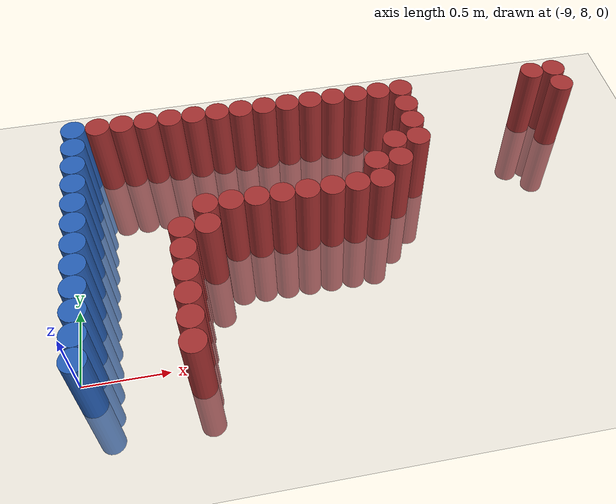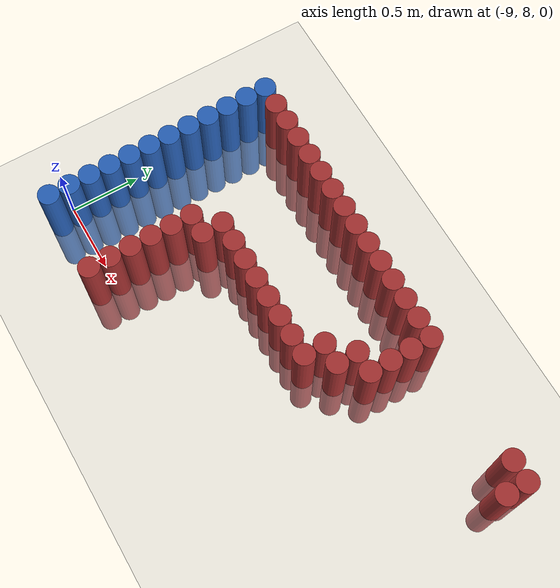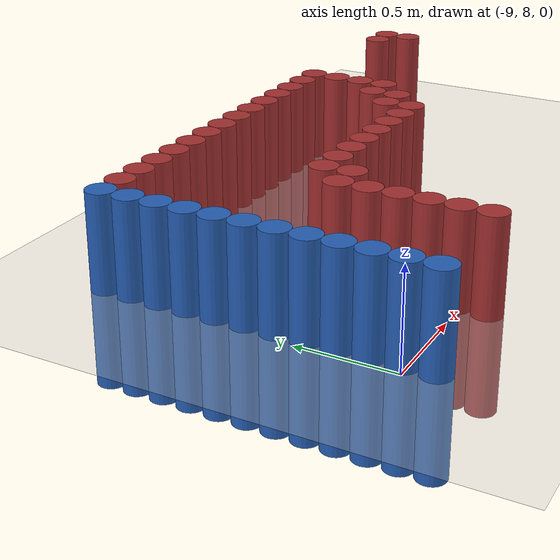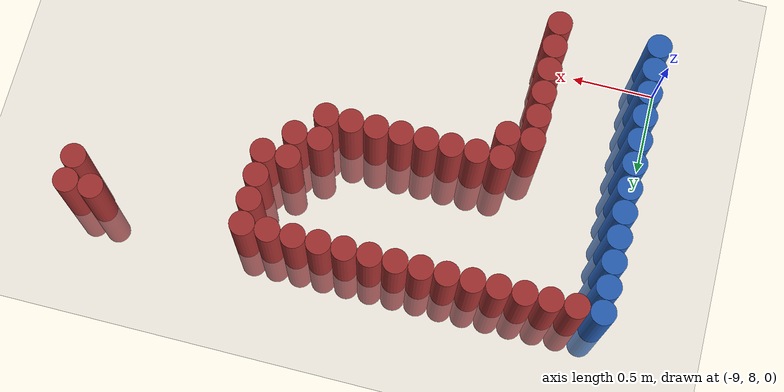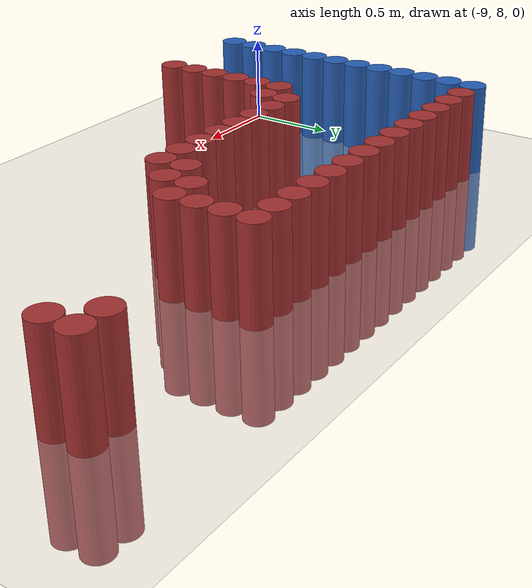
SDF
<sdf version="1.6">
 <world name="default">
  <model name="ground_plane">
   <static>1</static>
   <link name="link">
    <collision name="collision">
     <geometry><plane><normal>0 0 1</normal><size>100 100</size></plane></geometry>
     <surface><friction><ode><mu>100</mu><mu2>50</mu2></ode></friction></surface>
    </collision>
    <visual name="visual">
     <cast_shadows>0</cast_shadows>
     <geometry><plane><normal>0 0 1</normal><size>100 100</size></plane></geometry>
     <material>
      <script><uri>file://media/materials/scripts/gazebo.material</uri><name>Gazebo/Grey</name></script>
     </material>
    </visual>
   </link>
  </model>
  <model name="unit_cylinder_143">
   <static>1</static>
   <pose>-8.925000 7.875000 0.000000 0.000000 0.000000 0.000000</pose>
   <link name="link">
    <inertial>
     <mass>1</mass>
     <inertia><ixx>0.145833</ixx><ixy>0</ixy><ixz>0</ixz><iyy>0.145833</iyy><iyz>0</iyz><izz>0.125</izz></inertia>
    </inertial>
    <collision name="collision">
     <geometry><cylinder><radius>0.075000</radius><length>1</length></cylinder></geometry>
    </collision>
    <visual name="visual">
     <geometry><cylinder><radius>0.075000</radius><length>1</length></cylinder></geometry>
     <material>
      <ambient>0.152000 0.379000 0.720000 1</ambient>
      <diffuse>0.152000 0.379000 0.720000 1</diffuse>
     </material>
     <material>
      <script><name>Gazebo/Grey</name><uri>file://media/materials/scripts/gazebo.material</uri></script>
     </material>
    </visual>
   </link>
  </model>
  <model name="unit_cylinder_144">
   <static>1</static>
   <pose>-8.925000 8.025000 0.000000 0.000000 0.000000 0.000000</pose>
   <link name="link">
    <inertial>
     <mass>1</mass>
     <inertia><ixx>0.145833</ixx><ixy>0</ixy><ixz>0</ixz><iyy>0.145833</iyy><iyz>0</iyz><izz>0.125</izz></inertia>
    </inertial>
    <collision name="collision">
     <geometry><cylinder><radius>0.075000</radius><length>1</length></cylinder></geometry>
    </collision>
    <visual name="visual">
     <geometry><cylinder><radius>0.075000</radius><length>1</length></cylinder></geometry>
     <material>
      <ambient>0.152000 0.379000 0.720000 1</ambient>
      <diffuse>0.152000 0.379000 0.720000 1</diffuse>
     </material>
     <material>
      <script><name>Gazebo/Grey</name><uri>file://media/materials/scripts/gazebo.material</uri></script>
     </material>
    </visual>
   </link>
  </model>
  <model name="unit_cylinder_145">
   <static>1</static>
   <pose>-8.925000 8.175000 0.000000 0.000000 0.000000 0.000000</pose>
   <link name="link">
    <inertial>
     <mass>1</mass>
     <inertia><ixx>0.145833</ixx><ixy>0</ixy><ixz>0</ixz><iyy>0.145833</iyy><iyz>0</iyz><izz>0.125</izz></inertia>
    </inertial>
    <collision name="collision">
     <geometry><cylinder><radius>0.075000</radius><length>1</length></cylinder></geometry>
    </collision>
    <visual name="visual">
     <geometry><cylinder><radius>0.075000</radius><length>1</length></cylinder></geometry>
     <material>
      <ambient>0.152000 0.379000 0.720000 1</ambient>
      <diffuse>0.152000 0.379000 0.720000 1</diffuse>
     </material>
     <material>
      <script><name>Gazebo/Grey</name><uri>file://media/materials/scripts/gazebo.material</uri></script>
     </material>
    </visual>
   </link>
  </model>
  <model name="unit_cylinder_146">
   <static>1</static>
   <pose>-8.925000 8.325000 0.000000 0.000000 0.000000 0.000000</pose>
   <link name="link">
    <inertial>
     <mass>1</mass>
     <inertia><ixx>0.145833</ixx><ixy>0</ixy><ixz>0</ixz><iyy>0.145833</iyy><iyz>0</iyz><izz>0.125</izz></inertia>
    </inertial>
    <collision name="collision">
     <geometry><cylinder><radius>0.075000</radius><length>1</length></cylinder></geometry>
    </collision>
    <visual name="visual">
     <geometry><cylinder><radius>0.075000</radius><length>1</length></cylinder></geometry>
     <material>
      <ambient>0.152000 0.379000 0.720000 1</ambient>
      <diffuse>0.152000 0.379000 0.720000 1</diffuse>
     </material>
     <material>
      <script><name>Gazebo/Grey</name><uri>file://media/materials/scripts/gazebo.material</uri></script>
     </material>
    </visual>
   </link>
  </model>
  <model name="unit_cylinder_147">
   <static>1</static>
   <pose>-8.925000 8.475000 0.000000 0.000000 0.000000 0.000000</pose>
   <link name="link">
    <inertial>
     <mass>1</mass>
     <inertia><ixx>0.145833</ixx><ixy>0</ixy><ixz>0</ixz><iyy>0.145833</iyy><iyz>0</iyz><izz>0.125</izz></inertia>
    </inertial>
    <collision name="collision">
     <geometry><cylinder><radius>0.075000</radius><length>1</length></cylinder></geometry>
    </collision>
    <visual name="visual">
     <geometry><cylinder><radius>0.075000</radius><length>1</length></cylinder></geometry>
     <material>
      <ambient>0.152000 0.379000 0.720000 1</ambient>
      <diffuse>0.152000 0.379000 0.720000 1</diffuse>
     </material>
     <material>
      <script><name>Gazebo/Grey</name><uri>file://media/materials/scripts/gazebo.material</uri></script>
     </material>
    </visual>
   </link>
  </model>
  <model name="unit_cylinder_148">
   <static>1</static>
   <pose>-8.925000 8.625000 0.000000 0.000000 0.000000 0.000000</pose>
   <link name="link">
    <inertial>
     <mass>1</mass>
     <inertia><ixx>0.145833</ixx><ixy>0</ixy><ixz>0</ixz><iyy>0.145833</iyy><iyz>0</iyz><izz>0.125</izz></inertia>
    </inertial>
    <collision name="collision">
     <geometry><cylinder><radius>0.075000</radius><length>1</length></cylinder></geometry>
    </collision>
    <visual name="visual">
     <geometry><cylinder><radius>0.075000</radius><length>1</length></cylinder></geometry>
     <material>
      <ambient>0.152000 0.379000 0.720000 1</ambient>
      <diffuse>0.152000 0.379000 0.720000 1</diffuse>
     </material>
     <material>
      <script><name>Gazebo/Grey</name><uri>file://media/materials/scripts/gazebo.material</uri></script>
     </material>
    </visual>
   </link>
  </model>
  <model name="unit_cylinder_149">
   <static>1</static>
   <pose>-8.925000 8.775000 0.000000 0.000000 0.000000 0.000000</pose>
   <link name="link">
    <inertial>
     <mass>1</mass>
     <inertia><ixx>0.145833</ixx><ixy>0</ixy><ixz>0</ixz><iyy>0.145833</iyy><iyz>0</iyz><izz>0.125</izz></inertia>
    </inertial>
    <collision name="collision">
     <geometry><cylinder><radius>0.075000</radius><length>1</length></cylinder></geometry>
    </collision>
    <visual name="visual">
     <geometry><cylinder><radius>0.075000</radius><length>1</length></cylinder></geometry>
     <material>
      <ambient>0.152000 0.379000 0.720000 1</ambient>
      <diffuse>0.152000 0.379000 0.720000 1</diffuse>
     </material>
     <material>
      <script><name>Gazebo/Grey</name><uri>file://media/materials/scripts/gazebo.material</uri></script>
     </material>
    </visual>
   </link>
  </model>
  <model name="unit_cylinder_150">
   <static>1</static>
   <pose>-8.925000 8.925000 0.000000 0.000000 0.000000 0.000000</pose>
   <link name="link">
    <inertial>
     <mass>1</mass>
     <inertia><ixx>0.145833</ixx><ixy>0</ixy><ixz>0</ixz><iyy>0.145833</iyy><iyz>0</iyz><izz>0.125</izz></inertia>
    </inertial>
    <collision name="collision">
     <geometry><cylinder><radius>0.075000</radius><length>1</length></cylinder></geometry>
    </collision>
    <visual name="visual">
     <geometry><cylinder><radius>0.075000</radius><length>1</length></cylinder></geometry>
     <material>
      <ambient>0.152000 0.379000 0.720000 1</ambient>
      <diffuse>0.152000 0.379000 0.720000 1</diffuse>
     </material>
     <material>
      <script><name>Gazebo/Grey</name><uri>file://media/materials/scripts/gazebo.material</uri></script>
     </material>
    </visual>
   </link>
  </model>
  <model name="unit_cylinder_151">
   <static>1</static>
   <pose>-8.925000 9.075000 0.000000 0.000000 0.000000 0.000000</pose>
   <link name="link">
    <inertial>
     <mass>1</mass>
     <inertia><ixx>0.145833</ixx><ixy>0</ixy><ixz>0</ixz><iyy>0.145833</iyy><iyz>0</iyz><izz>0.125</izz></inertia>
    </inertial>
    <collision name="collision">
     <geometry><cylinder><radius>0.075000</radius><length>1</length></cylinder></geometry>
    </collision>
    <visual name="visual">
     <geometry><cylinder><radius>0.075000</radius><length>1</length></cylinder></geometry>
     <material>
      <ambient>0.152000 0.379000 0.720000 1</ambient>
      <diffuse>0.152000 0.379000 0.720000 1</diffuse>
     </material>
     <material>
      <script><name>Gazebo/Grey</name><uri>file://media/materials/scripts/gazebo.material</uri></script>
     </material>
    </visual>
   </link>
  </model>
  <model name="unit_cylinder_152">
   <static>1</static>
   <pose>-8.925000 9.225000 0.000000 0.000000 0.000000 0.000000</pose>
   <link name="link">
    <inertial>
     <mass>1</mass>
     <inertia><ixx>0.145833</ixx><ixy>0</ixy><ixz>0</ixz><iyy>0.145833</iyy><iyz>0</iyz><izz>0.125</izz></inertia>
    </inertial>
    <collision name="collision">
     <geometry><cylinder><radius>0.075000</radius><length>1</length></cylinder></geometry>
    </collision>
    <visual name="visual">
     <geometry><cylinder><radius>0.075000</radius><length>1</length></cylinder></geometry>
     <material>
      <ambient>0.152000 0.379000 0.720000 1</ambient>
      <diffuse>0.152000 0.379000 0.720000 1</diffuse>
     </material>
     <material>
      <script><name>Gazebo/Grey</name><uri>file://media/materials/scripts/gazebo.material</uri></script>
     </material>
    </visual>
   </link>
  </model>
  <model name="unit_cylinder_153">
   <static>1</static>
   <pose>-8.925000 9.375000 0.000000 0.000000 0.000000 0.000000</pose>
   <link name="link">
    <inertial>
     <mass>1</mass>
     <inertia><ixx>0.145833</ixx><ixy>0</ixy><ixz>0</ixz><iyy>0.145833</iyy><iyz>0</iyz><izz>0.125</izz></inertia>
    </inertial>
    <collision name="collision">
     <geometry><cylinder><radius>0.075000</radius><length>1</length></cylinder></geometry>
    </collision>
    <visual name="visual">
     <geometry><cylinder><radius>0.075000</radius><length>1</length></cylinder></geometry>
     <material>
      <ambient>0.152000 0.379000 0.720000 1</ambient>
      <diffuse>0.152000 0.379000 0.720000 1</diffuse>
     </material>
     <material>
      <script><name>Gazebo/Grey</name><uri>file://media/materials/scripts/gazebo.material</uri></script>
     </material>
    </visual>
   </link>
  </model>
  <model name="unit_cylinder_154">
   <static>1</static>
   <pose>-8.925000 9.525000 0.000000 0.000000 0.000000 0.000000</pose>
   <link name="link">
    <inertial>
     <mass>1</mass>
     <inertia><ixx>0.145833</ixx><ixy>0</ixy><ixz>0</ixz><iyy>0.145833</iyy><iyz>0</iyz><izz>0.125</izz></inertia>
    </inertial>
    <collision name="collision">
     <geometry><cylinder><radius>0.075000</radius><length>1</length></cylinder></geometry>
    </collision>
    <visual name="visual">
     <geometry><cylinder><radius>0.075000</radius><length>1</length></cylinder></geometry>
     <material>
      <ambient>0.152000 0.379000 0.720000 1</ambient>
      <diffuse>0.152000 0.379000 0.720000 1</diffuse>
     </material>
     <material>
      <script><name>Gazebo/Grey</name><uri>file://media/materials/scripts/gazebo.material</uri></script>
     </material>
    </visual>
   </link>
  </model>
  <model name="unit_cylinder_156">
   <static>1</static>
   <pose>-8.775000 9.525000 0.000000 0.000000 0.000000 0.000000</pose>
   <link name="link">
    <inertial>
     <mass>1</mass>
     <inertia><ixx>0.145833</ixx><ixy>0</ixy><ixz>0</ixz><iyy>0.145833</iyy><iyz>0</iyz><izz>0.125</izz></inertia>
    </inertial>
    <collision name="collision">
     <geometry><cylinder><radius>0.075000</radius><length>1</length></cylinder></geometry>
    </collision>
    <visual name="visual">
     <geometry><cylinder><radius>0.075000</radius><length>1</length></cylinder></geometry>
     <material>
      <ambient>0.648000 0.192000 0.192000 1</ambient>
      <diffuse>0.648000 0.192000 0.192000 1</diffuse>
     </material>
     <material>
      <script><name>Gazebo/Grey</name><uri>file://media/materials/scripts/gazebo.material</uri></script>
     </material>
    </visual>
   </link>
  </model>
  <model name="unit_cylinder_158">
   <static>1</static>
   <pose>-8.625000 9.525000 0.000000 0.000000 0.000000 0.000000</pose>
   <link name="link">
    <inertial>
     <mass>1</mass>
     <inertia><ixx>0.145833</ixx><ixy>0</ixy><ixz>0</ixz><iyy>0.145833</iyy><iyz>0</iyz><izz>0.125</izz></inertia>
    </inertial>
    <collision name="collision">
     <geometry><cylinder><radius>0.075000</radius><length>1</length></cylinder></geometry>
    </collision>
    <visual name="visual">
     <geometry><cylinder><radius>0.075000</radius><length>1</length></cylinder></geometry>
     <material>
      <ambient>0.648000 0.192000 0.192000 1</ambient>
      <diffuse>0.648000 0.192000 0.192000 1</diffuse>
     </material>
     <material>
      <script><name>Gazebo/Grey</name><uri>file://media/materials/scripts/gazebo.material</uri></script>
     </material>
    </visual>
   </link>
  </model>
  <model name="unit_cylinder_160">
   <static>1</static>
   <pose>-8.475000 9.525000 0.000000 0.000000 0.000000 0.000000</pose>
   <link name="link">
    <inertial>
     <mass>1</mass>
     <inertia><ixx>0.145833</ixx><ixy>0</ixy><ixz>0</ixz><iyy>0.145833</iyy><iyz>0</iyz><izz>0.125</izz></inertia>
    </inertial>
    <collision name="collision">
     <geometry><cylinder><radius>0.075000</radius><length>1</length></cylinder></geometry>
    </collision>
    <visual name="visual">
     <geometry><cylinder><radius>0.075000</radius><length>1</length></cylinder></geometry>
     <material>
      <ambient>0.648000 0.192000 0.192000 1</ambient>
      <diffuse>0.648000 0.192000 0.192000 1</diffuse>
     </material>
     <material>
      <script><name>Gazebo/Grey</name><uri>file://media/materials/scripts/gazebo.material</uri></script>
     </material>
    </visual>
   </link>
  </model>
  <model name="unit_cylinder_175">
   <static>1</static>
   <pose>-8.325000 7.875000 0.000000 0.000000 0.000000 0.000000</pose>
   <link name="link">
    <inertial>
     <mass>1</mass>
     <inertia><ixx>0.145833</ixx><ixy>0</ixy><ixz>0</ixz><iyy>0.145833</iyy><iyz>0</iyz><izz>0.125</izz></inertia>
    </inertial>
    <collision name="collision">
     <geometry><cylinder><radius>0.075000</radius><length>1</length></cylinder></geometry>
    </collision>
    <visual name="visual">
     <geometry><cylinder><radius>0.075000</radius><length>1</length></cylinder></geometry>
     <material>
      <ambient>0.648000 0.192000 0.192000 1</ambient>
      <diffuse>0.648000 0.192000 0.192000 1</diffuse>
     </material>
     <material>
      <script><name>Gazebo/Grey</name><uri>file://media/materials/scripts/gazebo.material</uri></script>
     </material>
    </visual>
   </link>
  </model>
  <model name="unit_cylinder_176">
   <static>1</static>
   <pose>-8.325000 8.025000 0.000000 0.000000 0.000000 0.000000</pose>
   <link name="link">
    <inertial>
     <mass>1</mass>
     <inertia><ixx>0.145833</ixx><ixy>0</ixy><ixz>0</ixz><iyy>0.145833</iyy><iyz>0</iyz><izz>0.125</izz></inertia>
    </inertial>
    <collision name="collision">
     <geometry><cylinder><radius>0.075000</radius><length>1</length></cylinder></geometry>
    </collision>
    <visual name="visual">
     <geometry><cylinder><radius>0.075000</radius><length>1</length></cylinder></geometry>
     <material>
      <ambient>0.648000 0.192000 0.192000 1</ambient>
      <diffuse>0.648000 0.192000 0.192000 1</diffuse>
     </material>
     <material>
      <script><name>Gazebo/Grey</name><uri>file://media/materials/scripts/gazebo.material</uri></script>
     </material>
    </visual>
   </link>
  </model>
  <model name="unit_cylinder_177">
   <static>1</static>
   <pose>-8.325000 8.175000 0.000000 0.000000 0.000000 0.000000</pose>
   <link name="link">
    <inertial>
     <mass>1</mass>
     <inertia><ixx>0.145833</ixx><ixy>0</ixy><ixz>0</ixz><iyy>0.145833</iyy><iyz>0</iyz><izz>0.125</izz></inertia>
    </inertial>
    <collision name="collision">
     <geometry><cylinder><radius>0.075000</radius><length>1</length></cylinder></geometry>
    </collision>
    <visual name="visual">
     <geometry><cylinder><radius>0.075000</radius><length>1</length></cylinder></geometry>
     <material>
      <ambient>0.648000 0.192000 0.192000 1</ambient>
      <diffuse>0.648000 0.192000 0.192000 1</diffuse>
     </material>
     <material>
      <script><name>Gazebo/Grey</name><uri>file://media/materials/scripts/gazebo.material</uri></script>
     </material>
    </visual>
   </link>
  </model>
  <model name="unit_cylinder_178">
   <static>1</static>
   <pose>-8.325000 8.325000 0.000000 0.000000 0.000000 0.000000</pose>
   <link name="link">
    <inertial>
     <mass>1</mass>
     <inertia><ixx>0.145833</ixx><ixy>0</ixy><ixz>0</ixz><iyy>0.145833</iyy><iyz>0</iyz><izz>0.125</izz></inertia>
    </inertial>
    <collision name="collision">
     <geometry><cylinder><radius>0.075000</radius><length>1</length></cylinder></geometry>
    </collision>
    <visual name="visual">
     <geometry><cylinder><radius>0.075000</radius><length>1</length></cylinder></geometry>
     <material>
      <ambient>0.648000 0.192000 0.192000 1</ambient>
      <diffuse>0.648000 0.192000 0.192000 1</diffuse>
     </material>
     <material>
      <script><name>Gazebo/Grey</name><uri>file://media/materials/scripts/gazebo.material</uri></script>
     </material>
    </visual>
   </link>
  </model>
  <model name="unit_cylinder_179">
   <static>1</static>
   <pose>-8.325000 8.475000 0.000000 0.000000 0.000000 0.000000</pose>
   <link name="link">
    <inertial>
     <mass>1</mass>
     <inertia><ixx>0.145833</ixx><ixy>0</ixy><ixz>0</ixz><iyy>0.145833</iyy><iyz>0</iyz><izz>0.125</izz></inertia>
    </inertial>
    <collision name="collision">
     <geometry><cylinder><radius>0.075000</radius><length>1</length></cylinder></geometry>
    </collision>
    <visual name="visual">
     <geometry><cylinder><radius>0.075000</radius><length>1</length></cylinder></geometry>
     <material>
      <ambient>0.648000 0.192000 0.192000 1</ambient>
      <diffuse>0.648000 0.192000 0.192000 1</diffuse>
     </material>
     <material>
      <script><name>Gazebo/Grey</name><uri>file://media/materials/scripts/gazebo.material</uri></script>
     </material>
    </visual>
   </link>
  </model>
  <model name="unit_cylinder_180">
   <static>1</static>
   <pose>-8.325000 8.625000 0.000000 0.000000 0.000000 0.000000</pose>
   <link name="link">
    <inertial>
     <mass>1</mass>
     <inertia><ixx>0.145833</ixx><ixy>0</ixy><ixz>0</ixz><iyy>0.145833</iyy><iyz>0</iyz><izz>0.125</izz></inertia>
    </inertial>
    <collision name="collision">
     <geometry><cylinder><radius>0.075000</radius><length>1</length></cylinder></geometry>
    </collision>
    <visual name="visual">
     <geometry><cylinder><radius>0.075000</radius><length>1</length></cylinder></geometry>
     <material>
      <ambient>0.648000 0.192000 0.192000 1</ambient>
      <diffuse>0.648000 0.192000 0.192000 1</diffuse>
     </material>
     <material>
      <script><name>Gazebo/Grey</name><uri>file://media/materials/scripts/gazebo.material</uri></script>
     </material>
    </visual>
   </link>
  </model>
  <model name="unit_cylinder_181">
   <static>1</static>
   <pose>-8.325000 9.525000 0.000000 0.000000 0.000000 0.000000</pose>
   <link name="link">
    <inertial>
     <mass>1</mass>
     <inertia><ixx>0.145833</ixx><ixy>0</ixy><ixz>0</ixz><iyy>0.145833</iyy><iyz>0</iyz><izz>0.125</izz></inertia>
    </inertial>
    <collision name="collision">
     <geometry><cylinder><radius>0.075000</radius><length>1</length></cylinder></geometry>
    </collision>
    <visual name="visual">
     <geometry><cylinder><radius>0.075000</radius><length>1</length></cylinder></geometry>
     <material>
      <ambient>0.648000 0.192000 0.192000 1</ambient>
      <diffuse>0.648000 0.192000 0.192000 1</diffuse>
     </material>
     <material>
      <script><name>Gazebo/Grey</name><uri>file://media/materials/scripts/gazebo.material</uri></script>
     </material>
    </visual>
   </link>
  </model>
  <model name="unit_cylinder_185">
   <static>1</static>
   <pose>-8.175000 8.625000 0.000000 0.000000 0.000000 0.000000</pose>
   <link name="link">
    <inertial>
     <mass>1</mass>
     <inertia><ixx>0.145833</ixx><ixy>0</ixy><ixz>0</ixz><iyy>0.145833</iyy><iyz>0</iyz><izz>0.125</izz></inertia>
    </inertial>
    <collision name="collision">
     <geometry><cylinder><radius>0.075000</radius><length>1</length></cylinder></geometry>
    </collision>
    <visual name="visual">
     <geometry><cylinder><radius>0.075000</radius><length>1</length></cylinder></geometry>
     <material>
      <ambient>0.648000 0.192000 0.192000 1</ambient>
      <diffuse>0.648000 0.192000 0.192000 1</diffuse>
     </material>
     <material>
      <script><name>Gazebo/Grey</name><uri>file://media/materials/scripts/gazebo.material</uri></script>
     </material>
    </visual>
   </link>
  </model>
  <model name="unit_cylinder_186">
   <static>1</static>
   <pose>-8.175000 8.775000 0.000000 0.000000 0.000000 0.000000</pose>
   <link name="link">
    <inertial>
     <mass>1</mass>
     <inertia><ixx>0.145833</ixx><ixy>0</ixy><ixz>0</ixz><iyy>0.145833</iyy><iyz>0</iyz><izz>0.125</izz></inertia>
    </inertial>
    <collision name="collision">
     <geometry><cylinder><radius>0.075000</radius><length>1</length></cylinder></geometry>
    </collision>
    <visual name="visual">
     <geometry><cylinder><radius>0.075000</radius><length>1</length></cylinder></geometry>
     <material>
      <ambient>0.648000 0.192000 0.192000 1</ambient>
      <diffuse>0.648000 0.192000 0.192000 1</diffuse>
     </material>
     <material>
      <script><name>Gazebo/Grey</name><uri>file://media/materials/scripts/gazebo.material</uri></script>
     </material>
    </visual>
   </link>
  </model>
  <model name="unit_cylinder_187">
   <static>1</static>
   <pose>-8.175000 9.525000 0.000000 0.000000 0.000000 0.000000</pose>
   <link name="link">
    <inertial>
     <mass>1</mass>
     <inertia><ixx>0.145833</ixx><ixy>0</ixy><ixz>0</ixz><iyy>0.145833</iyy><iyz>0</iyz><izz>0.125</izz></inertia>
    </inertial>
    <collision name="collision">
     <geometry><cylinder><radius>0.075000</radius><length>1</length></cylinder></geometry>
    </collision>
    <visual name="visual">
     <geometry><cylinder><radius>0.075000</radius><length>1</length></cylinder></geometry>
     <material>
      <ambient>0.648000 0.192000 0.192000 1</ambient>
      <diffuse>0.648000 0.192000 0.192000 1</diffuse>
     </material>
     <material>
      <script><name>Gazebo/Grey</name><uri>file://media/materials/scripts/gazebo.material</uri></script>
     </material>
    </visual>
   </link>
  </model>
  <model name="unit_cylinder_190">
   <static>1</static>
   <pose>-8.025000 8.775000 0.000000 0.000000 0.000000 0.000000</pose>
   <link name="link">
    <inertial>
     <mass>1</mass>
     <inertia><ixx>0.145833</ixx><ixy>0</ixy><ixz>0</ixz><iyy>0.145833</iyy><iyz>0</iyz><izz>0.125</izz></inertia>
    </inertial>
    <collision name="collision">
     <geometry><cylinder><radius>0.075000</radius><length>1</length></cylinder></geometry>
    </collision>
    <visual name="visual">
     <geometry><cylinder><radius>0.075000</radius><length>1</length></cylinder></geometry>
     <material>
      <ambient>0.648000 0.192000 0.192000 1</ambient>
      <diffuse>0.648000 0.192000 0.192000 1</diffuse>
     </material>
     <material>
      <script><name>Gazebo/Grey</name><uri>file://media/materials/scripts/gazebo.material</uri></script>
     </material>
    </visual>
   </link>
  </model>
  <model name="unit_cylinder_191">
   <static>1</static>
   <pose>-8.025000 9.525000 0.000000 0.000000 0.000000 0.000000</pose>
   <link name="link">
    <inertial>
     <mass>1</mass>
     <inertia><ixx>0.145833</ixx><ixy>0</ixy><ixz>0</ixz><iyy>0.145833</iyy><iyz>0</iyz><izz>0.125</izz></inertia>
    </inertial>
    <collision name="collision">
     <geometry><cylinder><radius>0.075000</radius><length>1</length></cylinder></geometry>
    </collision>
    <visual name="visual">
     <geometry><cylinder><radius>0.075000</radius><length>1</length></cylinder></geometry>
     <material>
      <ambient>0.648000 0.192000 0.192000 1</ambient>
      <diffuse>0.648000 0.192000 0.192000 1</diffuse>
     </material>
     <material>
      <script><name>Gazebo/Grey</name><uri>file://media/materials/scripts/gazebo.material</uri></script>
     </material>
    </visual>
   </link>
  </model>
  <model name="unit_cylinder_194">
   <static>1</static>
   <pose>-7.875000 8.775000 0.000000 0.000000 0.000000 0.000000</pose>
   <link name="link">
    <inertial>
     <mass>1</mass>
     <inertia><ixx>0.145833</ixx><ixy>0</ixy><ixz>0</ixz><iyy>0.145833</iyy><iyz>0</iyz><izz>0.125</izz></inertia>
    </inertial>
    <collision name="collision">
     <geometry><cylinder><radius>0.075000</radius><length>1</length></cylinder></geometry>
    </collision>
    <visual name="visual">
     <geometry><cylinder><radius>0.075000</radius><length>1</length></cylinder></geometry>
     <material>
      <ambient>0.648000 0.192000 0.192000 1</ambient>
      <diffuse>0.648000 0.192000 0.192000 1</diffuse>
     </material>
     <material>
      <script><name>Gazebo/Grey</name><uri>file://media/materials/scripts/gazebo.material</uri></script>
     </material>
    </visual>
   </link>
  </model>
  <model name="unit_cylinder_195">
   <static>1</static>
   <pose>-7.875000 9.525000 0.000000 0.000000 0.000000 0.000000</pose>
   <link name="link">
    <inertial>
     <mass>1</mass>
     <inertia><ixx>0.145833</ixx><ixy>0</ixy><ixz>0</ixz><iyy>0.145833</iyy><iyz>0</iyz><izz>0.125</izz></inertia>
    </inertial>
    <collision name="collision">
     <geometry><cylinder><radius>0.075000</radius><length>1</length></cylinder></geometry>
    </collision>
    <visual name="visual">
     <geometry><cylinder><radius>0.075000</radius><length>1</length></cylinder></geometry>
     <material>
      <ambient>0.648000 0.192000 0.192000 1</ambient>
      <diffuse>0.648000 0.192000 0.192000 1</diffuse>
     </material>
     <material>
      <script><name>Gazebo/Grey</name><uri>file://media/materials/scripts/gazebo.material</uri></script>
     </material>
    </visual>
   </link>
  </model>
  <model name="unit_cylinder_201">
   <static>1</static>
   <pose>-7.725000 8.775000 0.000000 0.000000 0.000000 0.000000</pose>
   <link name="link">
    <inertial>
     <mass>1</mass>
     <inertia><ixx>0.145833</ixx><ixy>0</ixy><ixz>0</ixz><iyy>0.145833</iyy><iyz>0</iyz><izz>0.125</izz></inertia>
    </inertial>
    <collision name="collision">
     <geometry><cylinder><radius>0.075000</radius><length>1</length></cylinder></geometry>
    </collision>
    <visual name="visual">
     <geometry><cylinder><radius>0.075000</radius><length>1</length></cylinder></geometry>
     <material>
      <ambient>0.648000 0.192000 0.192000 1</ambient>
      <diffuse>0.648000 0.192000 0.192000 1</diffuse>
     </material>
     <material>
      <script><name>Gazebo/Grey</name><uri>file://media/materials/scripts/gazebo.material</uri></script>
     </material>
    </visual>
   </link>
  </model>
  <model name="unit_cylinder_202">
   <static>1</static>
   <pose>-7.725000 9.525000 0.000000 0.000000 0.000000 0.000000</pose>
   <link name="link">
    <inertial>
     <mass>1</mass>
     <inertia><ixx>0.145833</ixx><ixy>0</ixy><ixz>0</ixz><iyy>0.145833</iyy><iyz>0</iyz><izz>0.125</izz></inertia>
    </inertial>
    <collision name="collision">
     <geometry><cylinder><radius>0.075000</radius><length>1</length></cylinder></geometry>
    </collision>
    <visual name="visual">
     <geometry><cylinder><radius>0.075000</radius><length>1</length></cylinder></geometry>
     <material>
      <ambient>0.648000 0.192000 0.192000 1</ambient>
      <diffuse>0.648000 0.192000 0.192000 1</diffuse>
     </material>
     <material>
      <script><name>Gazebo/Grey</name><uri>file://media/materials/scripts/gazebo.material</uri></script>
     </material>
    </visual>
   </link>
  </model>
  <model name="unit_cylinder_205">
   <static>1</static>
   <pose>-7.575000 8.775000 0.000000 0.000000 0.000000 0.000000</pose>
   <link name="link">
    <inertial>
     <mass>1</mass>
     <inertia><ixx>0.145833</ixx><ixy>0</ixy><ixz>0</ixz><iyy>0.145833</iyy><iyz>0</iyz><izz>0.125</izz></inertia>
    </inertial>
    <collision name="collision">
     <geometry><cylinder><radius>0.075000</radius><length>1</length></cylinder></geometry>
    </collision>
    <visual name="visual">
     <geometry><cylinder><radius>0.075000</radius><length>1</length></cylinder></geometry>
     <material>
      <ambient>0.648000 0.192000 0.192000 1</ambient>
      <diffuse>0.648000 0.192000 0.192000 1</diffuse>
     </material>
     <material>
      <script><name>Gazebo/Grey</name><uri>file://media/materials/scripts/gazebo.material</uri></script>
     </material>
    </visual>
   </link>
  </model>
  <model name="unit_cylinder_206">
   <static>1</static>
   <pose>-7.575000 9.525000 0.000000 0.000000 0.000000 0.000000</pose>
   <link name="link">
    <inertial>
     <mass>1</mass>
     <inertia><ixx>0.145833</ixx><ixy>0</ixy><ixz>0</ixz><iyy>0.145833</iyy><iyz>0</iyz><izz>0.125</izz></inertia>
    </inertial>
    <collision name="collision">
     <geometry><cylinder><radius>0.075000</radius><length>1</length></cylinder></geometry>
    </collision>
    <visual name="visual">
     <geometry><cylinder><radius>0.075000</radius><length>1</length></cylinder></geometry>
     <material>
      <ambient>0.648000 0.192000 0.192000 1</ambient>
      <diffuse>0.648000 0.192000 0.192000 1</diffuse>
     </material>
     <material>
      <script><name>Gazebo/Grey</name><uri>file://media/materials/scripts/gazebo.material</uri></script>
     </material>
    </visual>
   </link>
  </model>
  <model name="unit_cylinder_207">
   <static>1</static>
   <pose>-7.425000 8.775000 0.000000 0.000000 0.000000 0.000000</pose>
   <link name="link">
    <inertial>
     <mass>1</mass>
     <inertia><ixx>0.145833</ixx><ixy>0</ixy><ixz>0</ixz><iyy>0.145833</iyy><iyz>0</iyz><izz>0.125</izz></inertia>
    </inertial>
    <collision name="collision">
     <geometry><cylinder><radius>0.075000</radius><length>1</length></cylinder></geometry>
    </collision>
    <visual name="visual">
     <geometry><cylinder><radius>0.075000</radius><length>1</length></cylinder></geometry>
     <material>
      <ambient>0.648000 0.192000 0.192000 1</ambient>
      <diffuse>0.648000 0.192000 0.192000 1</diffuse>
     </material>
     <material>
      <script><name>Gazebo/Grey</name><uri>file://media/materials/scripts/gazebo.material</uri></script>
     </material>
    </visual>
   </link>
  </model>
  <model name="unit_cylinder_208">
   <static>1</static>
   <pose>-7.425000 9.525000 0.000000 0.000000 0.000000 0.000000</pose>
   <link name="link">
    <inertial>
     <mass>1</mass>
     <inertia><ixx>0.145833</ixx><ixy>0</ixy><ixz>0</ixz><iyy>0.145833</iyy><iyz>0</iyz><izz>0.125</izz></inertia>
    </inertial>
    <collision name="collision">
     <geometry><cylinder><radius>0.075000</radius><length>1</length></cylinder></geometry>
    </collision>
    <visual name="visual">
     <geometry><cylinder><radius>0.075000</radius><length>1</length></cylinder></geometry>
     <material>
      <ambient>0.648000 0.192000 0.192000 1</ambient>
      <diffuse>0.648000 0.192000 0.192000 1</diffuse>
     </material>
     <material>
      <script><name>Gazebo/Grey</name><uri>file://media/materials/scripts/gazebo.material</uri></script>
     </material>
    </visual>
   </link>
  </model>
  <model name="unit_cylinder_209">
   <static>1</static>
   <pose>-7.275000 8.775000 0.000000 0.000000 0.000000 0.000000</pose>
   <link name="link">
    <inertial>
     <mass>1</mass>
     <inertia><ixx>0.145833</ixx><ixy>0</ixy><ixz>0</ixz><iyy>0.145833</iyy><iyz>0</iyz><izz>0.125</izz></inertia>
    </inertial>
    <collision name="collision">
     <geometry><cylinder><radius>0.075000</radius><length>1</length></cylinder></geometry>
    </collision>
    <visual name="visual">
     <geometry><cylinder><radius>0.075000</radius><length>1</length></cylinder></geometry>
     <material>
      <ambient>0.648000 0.192000 0.192000 1</ambient>
      <diffuse>0.648000 0.192000 0.192000 1</diffuse>
     </material>
     <material>
      <script><name>Gazebo/Grey</name><uri>file://media/materials/scripts/gazebo.material</uri></script>
     </material>
    </visual>
   </link>
  </model>
  <model name="unit_cylinder_210">
   <static>1</static>
   <pose>-7.275000 9.525000 0.000000 0.000000 0.000000 0.000000</pose>
   <link name="link">
    <inertial>
     <mass>1</mass>
     <inertia><ixx>0.145833</ixx><ixy>0</ixy><ixz>0</ixz><iyy>0.145833</iyy><iyz>0</iyz><izz>0.125</izz></inertia>
    </inertial>
    <collision name="collision">
     <geometry><cylinder><radius>0.075000</radius><length>1</length></cylinder></geometry>
    </collision>
    <visual name="visual">
     <geometry><cylinder><radius>0.075000</radius><length>1</length></cylinder></geometry>
     <material>
      <ambient>0.648000 0.192000 0.192000 1</ambient>
      <diffuse>0.648000 0.192000 0.192000 1</diffuse>
     </material>
     <material>
      <script><name>Gazebo/Grey</name><uri>file://media/materials/scripts/gazebo.material</uri></script>
     </material>
    </visual>
   </link>
  </model>
  <model name="unit_cylinder_211">
   <static>1</static>
   <pose>-7.125000 8.775000 0.000000 0.000000 0.000000 0.000000</pose>
   <link name="link">
    <inertial>
     <mass>1</mass>
     <inertia><ixx>0.145833</ixx><ixy>0</ixy><ixz>0</ixz><iyy>0.145833</iyy><iyz>0</iyz><izz>0.125</izz></inertia>
    </inertial>
    <collision name="collision">
     <geometry><cylinder><radius>0.075000</radius><length>1</length></cylinder></geometry>
    </collision>
    <visual name="visual">
     <geometry><cylinder><radius>0.075000</radius><length>1</length></cylinder></geometry>
     <material>
      <ambient>0.648000 0.192000 0.192000 1</ambient>
      <diffuse>0.648000 0.192000 0.192000 1</diffuse>
     </material>
     <material>
      <script><name>Gazebo/Grey</name><uri>file://media/materials/scripts/gazebo.material</uri></script>
     </material>
    </visual>
   </link>
  </model>
  <model name="unit_cylinder_212">
   <static>1</static>
   <pose>-7.125000 8.925000 0.000000 0.000000 0.000000 0.000000</pose>
   <link name="link">
    <inertial>
     <mass>1</mass>
     <inertia><ixx>0.145833</ixx><ixy>0</ixy><ixz>0</ixz><iyy>0.145833</iyy><iyz>0</iyz><izz>0.125</izz></inertia>
    </inertial>
    <collision name="collision">
     <geometry><cylinder><radius>0.075000</radius><length>1</length></cylinder></geometry>
    </collision>
    <visual name="visual">
     <geometry><cylinder><radius>0.075000</radius><length>1</length></cylinder></geometry>
     <material>
      <ambient>0.648000 0.192000 0.192000 1</ambient>
      <diffuse>0.648000 0.192000 0.192000 1</diffuse>
     </material>
     <material>
      <script><name>Gazebo/Grey</name><uri>file://media/materials/scripts/gazebo.material</uri></script>
     </material>
    </visual>
   </link>
  </model>
  <model name="unit_cylinder_213">
   <static>1</static>
   <pose>-7.125000 9.525000 0.000000 0.000000 0.000000 0.000000</pose>
   <link name="link">
    <inertial>
     <mass>1</mass>
     <inertia><ixx>0.145833</ixx><ixy>0</ixy><ixz>0</ixz><iyy>0.145833</iyy><iyz>0</iyz><izz>0.125</izz></inertia>
    </inertial>
    <collision name="collision">
     <geometry><cylinder><radius>0.075000</radius><length>1</length></cylinder></geometry>
    </collision>
    <visual name="visual">
     <geometry><cylinder><radius>0.075000</radius><length>1</length></cylinder></geometry>
     <material>
      <ambient>0.648000 0.192000 0.192000 1</ambient>
      <diffuse>0.648000 0.192000 0.192000 1</diffuse>
     </material>
     <material>
      <script><name>Gazebo/Grey</name><uri>file://media/materials/scripts/gazebo.material</uri></script>
     </material>
    </visual>
   </link>
  </model>
  <model name="unit_cylinder_215">
   <static>1</static>
   <pose>-6.975000 8.925000 0.000000 0.000000 0.000000 0.000000</pose>
   <link name="link">
    <inertial>
     <mass>1</mass>
     <inertia><ixx>0.145833</ixx><ixy>0</ixy><ixz>0</ixz><iyy>0.145833</iyy><iyz>0</iyz><izz>0.125</izz></inertia>
    </inertial>
    <collision name="collision">
     <geometry><cylinder><radius>0.075000</radius><length>1</length></cylinder></geometry>
    </collision>
    <visual name="visual">
     <geometry><cylinder><radius>0.075000</radius><length>1</length></cylinder></geometry>
     <material>
      <ambient>0.648000 0.192000 0.192000 1</ambient>
      <diffuse>0.648000 0.192000 0.192000 1</diffuse>
     </material>
     <material>
      <script><name>Gazebo/Grey</name><uri>file://media/materials/scripts/gazebo.material</uri></script>
     </material>
    </visual>
   </link>
  </model>
  <model name="unit_cylinder_216">
   <static>1</static>
   <pose>-6.975000 9.075000 0.000000 0.000000 0.000000 0.000000</pose>
   <link name="link">
    <inertial>
     <mass>1</mass>
     <inertia><ixx>0.145833</ixx><ixy>0</ixy><ixz>0</ixz><iyy>0.145833</iyy><iyz>0</iyz><izz>0.125</izz></inertia>
    </inertial>
    <collision name="collision">
     <geometry><cylinder><radius>0.075000</radius><length>1</length></cylinder></geometry>
    </collision>
    <visual name="visual">
     <geometry><cylinder><radius>0.075000</radius><length>1</length></cylinder></geometry>
     <material>
      <ambient>0.648000 0.192000 0.192000 1</ambient>
      <diffuse>0.648000 0.192000 0.192000 1</diffuse>
     </material>
     <material>
      <script><name>Gazebo/Grey</name><uri>file://media/materials/scripts/gazebo.material</uri></script>
     </material>
    </visual>
   </link>
  </model>
  <model name="unit_cylinder_217">
   <static>1</static>
   <pose>-6.975000 9.525000 0.000000 0.000000 0.000000 0.000000</pose>
   <link name="link">
    <inertial>
     <mass>1</mass>
     <inertia><ixx>0.145833</ixx><ixy>0</ixy><ixz>0</ixz><iyy>0.145833</iyy><iyz>0</iyz><izz>0.125</izz></inertia>
    </inertial>
    <collision name="collision">
     <geometry><cylinder><radius>0.075000</radius><length>1</length></cylinder></geometry>
    </collision>
    <visual name="visual">
     <geometry><cylinder><radius>0.075000</radius><length>1</length></cylinder></geometry>
     <material>
      <ambient>0.648000 0.192000 0.192000 1</ambient>
      <diffuse>0.648000 0.192000 0.192000 1</diffuse>
     </material>
     <material>
      <script><name>Gazebo/Grey</name><uri>file://media/materials/scripts/gazebo.material</uri></script>
     </material>
    </visual>
   </link>
  </model>
  <model name="unit_cylinder_221">
   <static>1</static>
   <pose>-6.825000 9.075000 0.000000 0.000000 0.000000 0.000000</pose>
   <link name="link">
    <inertial>
     <mass>1</mass>
     <inertia><ixx>0.145833</ixx><ixy>0</ixy><ixz>0</ixz><iyy>0.145833</iyy><iyz>0</iyz><izz>0.125</izz></inertia>
    </inertial>
    <collision name="collision">
     <geometry><cylinder><radius>0.075000</radius><length>1</length></cylinder></geometry>
    </collision>
    <visual name="visual">
     <geometry><cylinder><radius>0.075000</radius><length>1</length></cylinder></geometry>
     <material>
      <ambient>0.648000 0.192000 0.192000 1</ambient>
      <diffuse>0.648000 0.192000 0.192000 1</diffuse>
     </material>
     <material>
      <script><name>Gazebo/Grey</name><uri>file://media/materials/scripts/gazebo.material</uri></script>
     </material>
    </visual>
   </link>
  </model>
  <model name="unit_cylinder_222">
   <static>1</static>
   <pose>-6.825000 9.225000 0.000000 0.000000 0.000000 0.000000</pose>
   <link name="link">
    <inertial>
     <mass>1</mass>
     <inertia><ixx>0.145833</ixx><ixy>0</ixy><ixz>0</ixz><iyy>0.145833</iyy><iyz>0</iyz><izz>0.125</izz></inertia>
    </inertial>
    <collision name="collision">
     <geometry><cylinder><radius>0.075000</radius><length>1</length></cylinder></geometry>
    </collision>
    <visual name="visual">
     <geometry><cylinder><radius>0.075000</radius><length>1</length></cylinder></geometry>
     <material>
      <ambient>0.648000 0.192000 0.192000 1</ambient>
      <diffuse>0.648000 0.192000 0.192000 1</diffuse>
     </material>
     <material>
      <script><name>Gazebo/Grey</name><uri>file://media/materials/scripts/gazebo.material</uri></script>
     </material>
    </visual>
   </link>
  </model>
  <model name="unit_cylinder_223">
   <static>1</static>
   <pose>-6.825000 9.375000 0.000000 0.000000 0.000000 0.000000</pose>
   <link name="link">
    <inertial>
     <mass>1</mass>
     <inertia><ixx>0.145833</ixx><ixy>0</ixy><ixz>0</ixz><iyy>0.145833</iyy><iyz>0</iyz><izz>0.125</izz></inertia>
    </inertial>
    <collision name="collision">
     <geometry><cylinder><radius>0.075000</radius><length>1</length></cylinder></geometry>
    </collision>
    <visual name="visual">
     <geometry><cylinder><radius>0.075000</radius><length>1</length></cylinder></geometry>
     <material>
      <ambient>0.648000 0.192000 0.192000 1</ambient>
      <diffuse>0.648000 0.192000 0.192000 1</diffuse>
     </material>
     <material>
      <script><name>Gazebo/Grey</name><uri>file://media/materials/scripts/gazebo.material</uri></script>
     </material>
    </visual>
   </link>
  </model>
  <model name="unit_cylinder_224">
   <static>1</static>
   <pose>-6.825000 9.525000 0.000000 0.000000 0.000000 0.000000</pose>
   <link name="link">
    <inertial>
     <mass>1</mass>
     <inertia><ixx>0.145833</ixx><ixy>0</ixy><ixz>0</ixz><iyy>0.145833</iyy><iyz>0</iyz><izz>0.125</izz></inertia>
    </inertial>
    <collision name="collision">
     <geometry><cylinder><radius>0.075000</radius><length>1</length></cylinder></geometry>
    </collision>
    <visual name="visual">
     <geometry><cylinder><radius>0.075000</radius><length>1</length></cylinder></geometry>
     <material>
      <ambient>0.648000 0.192000 0.192000 1</ambient>
      <diffuse>0.648000 0.192000 0.192000 1</diffuse>
     </material>
     <material>
      <script><name>Gazebo/Grey</name><uri>file://media/materials/scripts/gazebo.material</uri></script>
     </material>
    </visual>
   </link>
  </model>
  <model name="unit_cylinder_248">
   <static>1</static>
   <pose>-5.925000 9.525000 0.000000 0.000000 0.000000 0.000000</pose>
   <link name="link">
    <inertial>
     <mass>1</mass>
     <inertia><ixx>0.145833</ixx><ixy>0</ixy><ixz>0</ixz><iyy>0.145833</iyy><iyz>0</iyz><izz>0.125</izz></inertia>
    </inertial>
    <collision name="collision">
     <geometry><cylinder><radius>0.075000</radius><length>1</length></cylinder></geometry>
    </collision>
    <visual name="visual">
     <geometry><cylinder><radius>0.075000</radius><length>1</length></cylinder></geometry>
     <material>
      <ambient>0.648000 0.192000 0.192000 1</ambient>
      <diffuse>0.648000 0.192000 0.192000 1</diffuse>
     </material>
     <material>
      <script><name>Gazebo/Grey</name><uri>file://media/materials/scripts/gazebo.material</uri></script>
     </material>
    </visual>
   </link>
  </model>
  <model name="unit_cylinder_253">
   <static>1</static>
   <pose>-5.775000 9.375000 0.000000 0.000000 0.000000 0.000000</pose>
   <link name="link">
    <inertial>
     <mass>1</mass>
     <inertia><ixx>0.145833</ixx><ixy>0</ixy><ixz>0</ixz><iyy>0.145833</iyy><iyz>0</iyz><izz>0.125</izz></inertia>
    </inertial>
    <collision name="collision">
     <geometry><cylinder><radius>0.075000</radius><length>1</length></cylinder></geometry>
    </collision>
    <visual name="visual">
     <geometry><cylinder><radius>0.075000</radius><length>1</length></cylinder></geometry>
     <material>
      <ambient>0.648000 0.192000 0.192000 1</ambient>
      <diffuse>0.648000 0.192000 0.192000 1</diffuse>
     </material>
     <material>
      <script><name>Gazebo/Grey</name><uri>file://media/materials/scripts/gazebo.material</uri></script>
     </material>
    </visual>
   </link>
  </model>
  <model name="unit_cylinder_254">
   <static>1</static>
   <pose>-5.775000 9.525000 0.000000 0.000000 0.000000 0.000000</pose>
   <link name="link">
    <inertial>
     <mass>1</mass>
     <inertia><ixx>0.145833</ixx><ixy>0</ixy><ixz>0</ixz><iyy>0.145833</iyy><iyz>0</iyz><izz>0.125</izz></inertia>
    </inertial>
    <collision name="collision">
     <geometry><cylinder><radius>0.075000</radius><length>1</length></cylinder></geometry>
    </collision>
    <visual name="visual">
     <geometry><cylinder><radius>0.075000</radius><length>1</length></cylinder></geometry>
     <material>
      <ambient>0.648000 0.192000 0.192000 1</ambient>
      <diffuse>0.648000 0.192000 0.192000 1</diffuse>
     </material>
     <material>
      <script><name>Gazebo/Grey</name><uri>file://media/materials/scripts/gazebo.material</uri></script>
     </material>
    </visual>
   </link>
  </model>
 </world>
</sdf>
